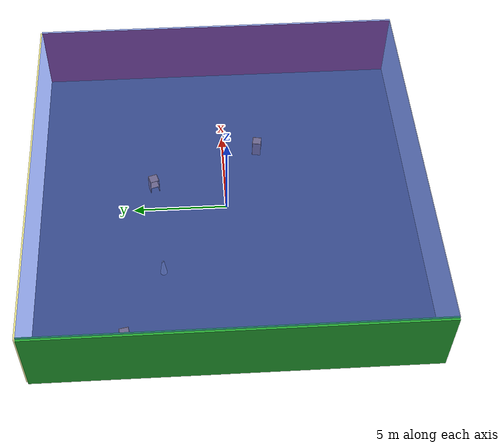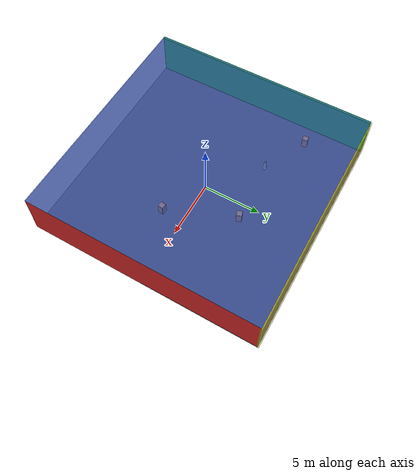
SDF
<sdf version="1.4">
 <world name="default">
  <physics type="ode">
   <max_step_size>0.001</max_step_size>
   <real_time_factor>1</real_time_factor>
   <real_time_update_rate>1000</real_time_update_rate>
   <gravity>0 0 -9.8</gravity>
  </physics>
  <scene><ambient>0.4 0.4 0.4 1</ambient><background>0.7 0.7 0.7 1</background><shadows>1</shadows></scene>
  <model name="Surrounding">
   <static>1</static>
   <link name="Ceiling">
    <collision name="Ceiling_Collision"><geometry><box><size>20 20 0.1</size></box></geometry></collision>
    <visual name="Ceiling_Visual">
     <geometry><box><size>20 20 0.1</size></box></geometry>
     <material>
      <script><uri>file://media/materials/scripts/gazebo.material</uri><name>Gazebo/BlueTransparent</name></script>
     </material>
    </visual>
    <pose>0 0 4.05 0 0 0</pose>
   </link>
   <link name="Wall_South">
    <collision name="Wall_South_Collision">
     <geometry><box><size>20 0 4</size></box></geometry>
     <pose>0 0 2 0 -0 0</pose>
    </collision>
    <visual name="Wall_South_Visual">
     <pose>0 0 2 0 -0 0</pose>
     <geometry><box><size>20 0 4</size></box></geometry>
     <material>
      <script><uri>file://media/materials/scripts/gazebo.material</uri><name>Gazebo/WhiteGlow</name></script>
     </material>
    </visual>
    <velocity_decay><linear>0</linear><angular>0</angular></velocity_decay>
    <pose>0 -10 0 0 -0 0</pose>
   </link>
   <link name="Wall_East">
    <collision name="Wall_21_Collision">
     <geometry><box><size>20 0 4</size></box></geometry>
     <pose>0 0 2 0 -0 0</pose>
    </collision>
    <visual name="Wall_21_Visual">
     <pose>0 0 2 0 -0 0</pose>
     <geometry><box><size>20 0 4</size></box></geometry>
     <material>
      <script><uri>file://media/materials/scripts/gazebo.material</uri><name>Gazebo/Red</name></script>
     </material>
    </visual>
    <velocity_decay><linear>0</linear><angular>0</angular></velocity_decay>
    <pose>10 0 0 0 -0 1.5708</pose>
   </link>
   <link name="Wall_North">
    <collision name="Wall_22_Collision">
     <geometry><box><size>20 0.2 4</size></box></geometry>
     <pose>0 0 2 0 -0 0</pose>
    </collision>
    <visual name="Wall_22_Visual">
     <pose>0 0 2 0 -0 0</pose>
     <geometry><box><size>20 0.2 4</size></box></geometry>
     <material>
      <script>
       <uri>file://media/materials/scripts/gazebo.material</uri>
       <name>Gazebo/YellowTransparent</name>
      </script>
     </material>
    </visual>
    <velocity_decay><linear>0</linear><angular>0</angular></velocity_decay>
    <pose>0 10 0 0 -0 0</pose>
   </link>
   <link name="Wall_West">
    <collision name="Wall_23_Collision">
     <geometry><box><size>20 0.2 4</size></box></geometry>
     <pose>0 0 2 0 -0 0</pose>
    </collision>
    <visual name="Wall_23_Visual">
     <pose>0 0 2 0 -0 0</pose>
     <geometry><box><size>20 0.2 4</size></box></geometry>
     <material>
      <script><uri>file://media/materials/scripts/gazebo.material</uri><name>Gazebo/GreenGlow</name></script>
     </material>
    </visual>
    <velocity_decay><linear>0</linear><angular>0</angular></velocity_decay>
    <pose>-10 0 0 0 0 -1.5708</pose>
   </link>
   <link name="Ground_link">
    <collision name="collision">
     <pose>0 0 .05 0 -0 0</pose>
     <geometry><box><size>20 20 0.1</size></box></geometry>
    </collision>
    <visual name="visual">
     <pose>0 0 .05 0 -0 0</pose>
     <geometry><box><size>20 20 0.1</size></box></geometry>
     <material>
      <script><uri>file://media/materials/scripts/gazebo.material</uri><name>Gazebo/Road</name></script>
     </material>
    </visual>
   </link>
   <static>1</static>
  </model>
  <spherical_coordinates>
   <surface_model>EARTH_WGS84</surface_model>
   <latitude_deg>0</latitude_deg>
   <longitude_deg>0</longitude_deg>
   <elevation>0</elevation>
   <heading_deg>0</heading_deg>
  </spherical_coordinates>
  <light name="lightball_0" type="diffuse">
   <diffuse>0.8 0.8 0.8 1</diffuse>
   <specular>0.2 0.2 0.2 1</specular>
   <attenuation>
    <range>100</range>
    <constant>0.7</constant>
    <linear>0.01</linear>
    <quadratic>0.001</quadratic>
   </attenuation>
   <direction>-0.5 0.1 -0.9</direction>
   <pose>-0.323565324977 3.16516013829 1.86863313808 0 0 0</pose>
  </light>
  <light name="lightball_1" type="diffuse">
   <diffuse>0.8 0.8 0.8 1</diffuse>
   <specular>0.2 0.2 0.2 1</specular>
   <attenuation>
    <range>100</range>
    <constant>0.7</constant>
    <linear>0.01</linear>
    <quadratic>0.001</quadratic>
   </attenuation>
   <direction>-0.5 0.1 -0.9</direction>
   <pose>9.00850982027 -5.17849293414 1.07743228293 0 0 0</pose>
  </light>
  <light name="lightball_2" type="diffuse">
   <diffuse>0.8 0.8 0.8 1</diffuse>
   <specular>0.2 0.2 0.2 1</specular>
   <attenuation>
    <range>100</range>
    <constant>0.7</constant>
    <linear>0.01</linear>
    <quadratic>0.001</quadratic>
   </attenuation>
   <direction>-0.5 0.1 -0.9</direction>
   <pose>-3.77753870354 -2.51041129971 2.9412281146 0 0 0</pose>
  </light>
  <light name="lightball_3" type="diffuse">
   <diffuse>0.8 0.8 0.8 1</diffuse>
   <specular>0.2 0.2 0.2 1</specular>
   <attenuation>
    <range>100</range>
    <constant>0.7</constant>
    <linear>0.01</linear>
    <quadratic>0.001</quadratic>
   </attenuation>
   <direction>-0.5 0.1 -0.9</direction>
   <pose>4.93834808755 -9.84100479941 3.32788080209 0 0 0</pose>
  </light>
  <light name="lightball_4" type="diffuse">
   <diffuse>0.8 0.8 0.8 1</diffuse>
   <specular>0.2 0.2 0.2 1</specular>
   <attenuation>
    <range>100</range>
    <constant>0.7</constant>
    <linear>0.01</linear>
    <quadratic>0.001</quadratic>
   </attenuation>
   <direction>-0.5 0.1 -0.9</direction>
   <pose>9.8146801917 5.68240481584 2.0911283429 0 0 0</pose>
  </light>
  <light name="lightball_5" type="diffuse">
   <diffuse>0.8 0.8 0.8 1</diffuse>
   <specular>0.2 0.2 0.2 1</specular>
   <attenuation>
    <range>100</range>
    <constant>0.7</constant>
    <linear>0.01</linear>
    <quadratic>0.001</quadratic>
   </attenuation>
   <direction>-0.5 0.1 -0.9</direction>
   <pose>3.03871289803 0.416593677381 1.50546556626 0 0 0</pose>
  </light>
  <light name="lightball_6" type="diffuse">
   <diffuse>0.8 0.8 0.8 1</diffuse>
   <specular>0.2 0.2 0.2 1</specular>
   <attenuation>
    <range>100</range>
    <constant>0.7</constant>
    <linear>0.01</linear>
    <quadratic>0.001</quadratic>
   </attenuation>
   <direction>-0.5 0.1 -0.9</direction>
   <pose>1.48847974362 -7.87371653515 3.65865407899 0 0 0</pose>
  </light>
  <light name="lightball_7" type="diffuse">
   <diffuse>0.8 0.8 0.8 1</diffuse>
   <specular>0.2 0.2 0.2 1</specular>
   <attenuation>
    <range>100</range>
    <constant>0.7</constant>
    <linear>0.01</linear>
    <quadratic>0.001</quadratic>
   </attenuation>
   <direction>-0.5 0.1 -0.9</direction>
   <pose>-3.30451886029 -8.32870950843 2.95574277815 0 0 0</pose>
  </light>
  <light name="lightball_8" type="diffuse">
   <diffuse>0.8 0.8 0.8 1</diffuse>
   <specular>0.2 0.2 0.2 1</specular>
   <attenuation>
    <range>100</range>
    <constant>0.7</constant>
    <linear>0.01</linear>
    <quadratic>0.001</quadratic>
   </attenuation>
   <direction>-0.5 0.1 -0.9</direction>
   <pose>-2.31542132238 -4.34705903169 3.36308995872 0 0 0</pose>
  </light>
  <light name="lightball_9" type="diffuse">
   <diffuse>0.8 0.8 0.8 1</diffuse>
   <specular>0.2 0.2 0.2 1</specular>
   <attenuation>
    <range>100</range>
    <constant>0.7</constant>
    <linear>0.01</linear>
    <quadratic>0.001</quadratic>
   </attenuation>
   <direction>-0.5 0.1 -0.9</direction>
   <pose>3.9679043744 9.33012644438 0.86315326513 0 0 0</pose>
  </light>
  <light name="lightball_10" type="diffuse">
   <diffuse>0.8 0.8 0.8 1</diffuse>
   <specular>0.2 0.2 0.2 1</specular>
   <attenuation>
    <range>100</range>
    <constant>0.7</constant>
    <linear>0.01</linear>
    <quadratic>0.001</quadratic>
   </attenuation>
   <direction>-0.5 0.1 -0.9</direction>
   <pose>-5.78521427247 9.23544233854 3.40958910219 0 0 0</pose>
  </light>
  <light name="lightball_11" type="diffuse">
   <diffuse>0.8 0.8 0.8 1</diffuse>
   <specular>0.2 0.2 0.2 1</specular>
   <attenuation>
    <range>100</range>
    <constant>0.7</constant>
    <linear>0.01</linear>
    <quadratic>0.001</quadratic>
   </attenuation>
   <direction>-0.5 0.1 -0.9</direction>
   <pose>1.42304890247 8.46882907763 2.45968054844 0 0 0</pose>
  </light>
  <light name="lightball_12" type="diffuse">
   <diffuse>0.8 0.8 0.8 1</diffuse>
   <specular>0.2 0.2 0.2 1</specular>
   <attenuation>
    <range>100</range>
    <constant>0.7</constant>
    <linear>0.01</linear>
    <quadratic>0.001</quadratic>
   </attenuation>
   <direction>-0.5 0.1 -0.9</direction>
   <pose>1.94163129052 8.24790472895 3.37227946629 0 0 0</pose>
  </light>
  <light name="lightball_13" type="diffuse">
   <diffuse>0.8 0.8 0.8 1</diffuse>
   <specular>0.2 0.2 0.2 1</specular>
   <attenuation>
    <range>100</range>
    <constant>0.7</constant>
    <linear>0.01</linear>
    <quadratic>0.001</quadratic>
   </attenuation>
   <direction>-0.5 0.1 -0.9</direction>
   <pose>2.32964957187 -6.29210948684 3.46560445738 0 0 0</pose>
  </light>
  <include><uri>model://cabinet</uri><pose>-8.12194754149 5.40303845551 0 0 0 0.181588629725</pose></include>
  <include>
   <uri>model://construction_cone</uri>
   <pose>-4.15377988208 3.47080351218 0 0 0 1.40350252072</pose>
  </include>
  <include><uri>model://cabinet</uri><pose>1.35469293264 3.90336385745 0 0 0 0.296233969912</pose></include>
  <include><uri>model://cabinet</uri><pose>3.77846996167 -1.90464228111 0 0 0 1.40915053518</pose></include>
 </world>
</sdf>

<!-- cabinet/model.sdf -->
<sdf version="1.5">
  <model name="cabinet">
    <static>true</static>
    <link name="cabinet_bottom_plate">
      <inertial>
        <pose>0 0 -1 0 0 0</pose>
        <inertia>
          <ixx>2.050000</ixx>
          <ixy>0</ixy>
          <ixz>0</ixz>
          <iyy>2.050000</iyy>
          <iyz>0</iyz>
          <izz>2.050000</izz>
        </inertia>
        <mass>25.000000</mass>
      </inertial>
      <collision name="cabinet_bottom_plate_geom">
        <pose>0 0 0.010000 0 0 0</pose>
        <geometry>
          <box>
            <size>0.450000 0.450000 0.020000</size>
          </box>
        </geometry>
      </collision>
      <visual name="cabinet_bottom_plate_geom_visual">
        <pose>0 0 0.010000 0 0 0</pose>
        <geometry>
          <box>
            <size>0.450000 0.450000 0.020000</size>
          </box>
        </geometry>
        <material>
          <script>
            <uri>model://media/materials/scripts/gazebo.material</uri>
            <name>Gazebo/Wood</name>
          </script>
        </material>
      </visual>
      <collision name="cabinet_bottom_plate_geom_cabinet_back_plate">
        <pose>0.235000 0 0.510000 0 0 0</pose>
        <geometry>
          <box>
            <size>0.020000 0.450000 1.020000</size>
          </box>
        </geometry>
      </collision>
      <visual name="cabinet_bottom_plate_geom_cabinet_back_plate_visual">
        <pose>0.235000 0 0.510000 0 0 0</pose>
        <geometry>
          <box>
            <size>0.020000 0.450000 1.020000</size>
          </box>
        </geometry>
        <material>
          <script>
            <uri>model://media/materials/scripts/gazebo.material</uri>
            <name>Gazebo/Wood</name>
          </script>
        </material>
      </visual>
      <collision name="cabinet_bottom_plate_geom_cabinet_left_plate">
        <pose>0 0.235000 0.510000 0 0 0</pose>
        <geometry>
          <box>
            <size>0.450000 0.020000 1.020000</size>
          </box>
        </geometry>
      </collision>
      <visual name="cabinet_bottom_plate_geom_cabinet_left_plate_visual">
        <pose>0 0.235000 0.510000 0 0 0</pose>
        <geometry>
          <box>
            <size>0.450000 0.020000 1.020000</size>
          </box>
        </geometry>
        <material>
          <script>
            <uri>model://media/materials/scripts/gazebo.material</uri>
            <name>Gazebo/Wood</name>
          </script>
        </material>
      </visual>
      <collision name="cabinet_bottom_plate_geom_cabinet_middle_plate">
        <pose>0 0 0.510000 0 0 0</pose>
        <geometry>
          <box>
            <size>0.450000 0.450000 0.020000</size>
          </box>
        </geometry>
      </collision>
      <visual name="cabinet_bottom_plate_geom_cabinet_middle_plate_visual">
        <pose>0 0 0.510000 0 0 0</pose>
        <geometry>
          <box>
            <size>0.450000 0.450000 0.020000</size>
          </box>
        </geometry>
        <material>
          <script>
            <uri>model://media/materials/scripts/gazebo.material</uri>
            <name>Gazebo/Wood</name>
          </script>
        </material>
      </visual>
      <collision name="cabinet_bottom_plate_geom_cabinet_right_plate">
        <pose>0 -0.235000 0.510000 0 0 0</pose>
        <geometry>
          <box>
            <size>0.450000 0.020000 1.020000</size>
          </box>
        </geometry>
      </collision>
      <visual name="cabinet_bottom_plate_geom_cabinet_right_plate_visual">
        <pose>0 -0.235000 0.510000 0 0 0</pose>
        <geometry>
          <box>
            <size>0.450000 0.020000 1.020000</size>
          </box>
        </geometry>
        <material>
          <script>
            <uri>model://media/materials/scripts/gazebo.material</uri>
            <name>Gazebo/Wood</name>
          </script>
        </material>
      </visual>
      <collision name="cabinet_bottom_plate_geom_cabinet_top_plate">
        <pose>0 0 1.010000 0 0 0</pose>
        <geometry>
          <box>
            <size>0.450000 0.450000 0.020000</size>
          </box>
        </geometry>
      </collision>
      <visual name="cabinet_bottom_plate_geom_cabinet_top_plate_visual">
        <pose>0 0 1.010000 0 0 0</pose>
        <geometry>
          <box>
            <size>0.450000 0.450000 0.020000</size>
          </box>
        </geometry>
        <material>
          <script>
            <uri>model://media/materials/scripts/gazebo.material</uri>
            <name>Gazebo/Wood</name>
          </script>
        </material>
      </visual>
    </link>
  </model>
</sdf>

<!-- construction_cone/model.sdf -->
<sdf version="1.5">
  <model name="Construction Cone">
    <link name="link">
      <collision name="collision">
        <geometry>
          <mesh>
            <scale>10 10 10</scale>
            <uri>file://isr-testbed/construction_cone/meshes/construction_cone.dae</uri>
          </mesh>
        </geometry>
      </collision>
      <visual name="visual">
        <geometry>
          <mesh>
            <scale>10 10 10</scale>
            <uri>file://isr-testbed/construction_cone/meshes/construction_cone.dae</uri>
          </mesh>
        </geometry>
      </visual>
    </link>
  </model>
</sdf>
